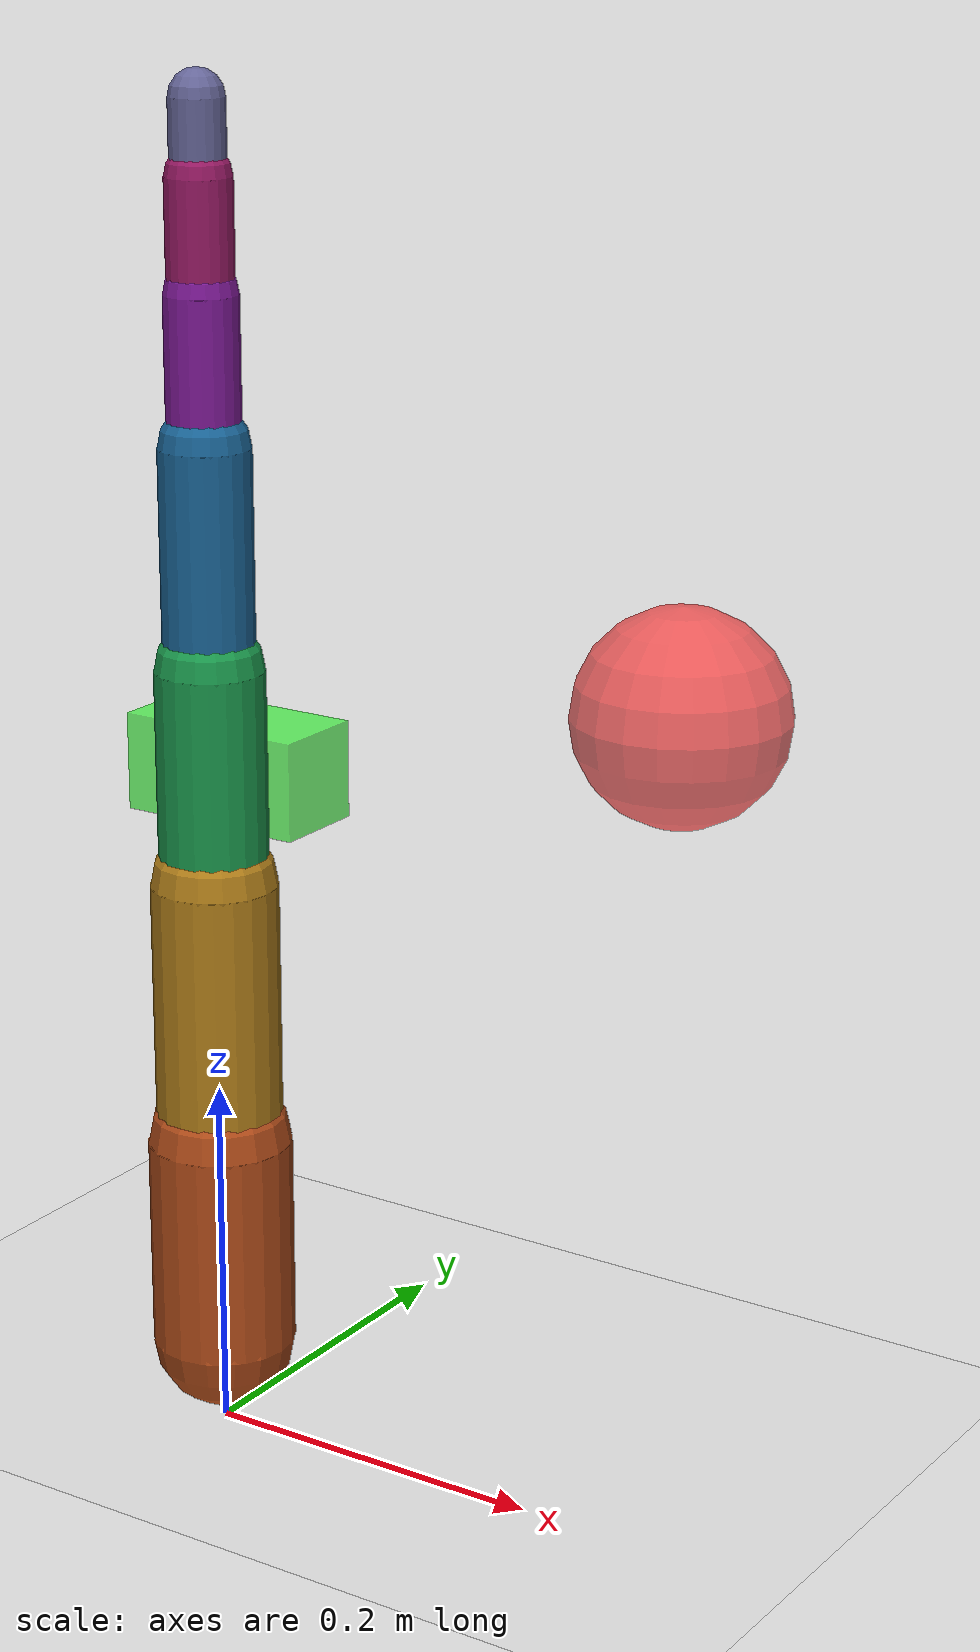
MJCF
<mujoco model="arm7dof">
  <compiler angle="radian"/>
  <option gravity="0 0 -9.81"/>

  <default>
    <joint damping="0.5" armature="0.01"/>
    <geom contype="1" conaffinity="1" condim="3" friction="1 0.005 0.001"/>
  </default>

  <worldbody>
    <light pos="0 0 3" dir="0 0 -1"/>
    <geom name="floor" type="plane" size="2 2 0.01" contype="0" conaffinity="0" rgba="0.9 0.9 0.9 1"/>

    <body name="link1" pos="0 0 0.05">
      <joint name="j1" type="hinge" axis="0 0 1" range="-2.89 2.89"/>
      <geom name="g1" type="capsule" fromto="0 0 0 0 0 0.12" size="0.04" mass="2.0" rgba="0.7 0.3 0.1 1"/>

      <body name="link2" pos="0 0 0.12">
        <joint name="j2" type="hinge" axis="0 1 0" range="-1.76 1.76"/>
        <geom name="g2" type="capsule" fromto="0 0 0 0 0 0.15" size="0.035" mass="2.0" rgba="0.7 0.5 0.1 1"/>

        <body name="link3" pos="0 0 0.15">
          <joint name="j3" type="hinge" axis="0 0 1" range="-2.89 2.89"/>
          <geom name="g3" type="capsule" fromto="0 0 0 0 0 0.12" size="0.03" mass="1.5" rgba="0.1 0.6 0.3 1"/>

          <body name="link4" pos="0 0 0.12">
            <joint name="j4" type="hinge" axis="0 1 0" range="-2.5 0.5"/>
            <geom name="g4" type="capsule" fromto="0 0 0 0 0 0.12" size="0.025" mass="1.5" rgba="0.1 0.4 0.6 1"/>

            <body name="link5" pos="0 0 0.12">
              <joint name="j5" type="hinge" axis="0 0 1" range="-2.89 2.89"/>
              <geom name="g5" type="capsule" fromto="0 0 0 0 0 0.08" size="0.02" mass="1.0" rgba="0.5 0.1 0.6 1"/>

              <body name="link6" pos="0 0 0.08">
                <joint name="j6" type="hinge" axis="0 1 0" range="-1.5 2.5"/>
                <geom name="g6" type="capsule" fromto="0 0 0 0 0 0.06" size="0.018" mass="0.5" rgba="0.6 0.1 0.4 1"/>

                <body name="link7" pos="0 0 0.06">
                  <joint name="j7" type="hinge" axis="0 0 1" range="-2.89 2.89"/>
                  <geom name="g7" type="capsule" fromto="0 0 0 0 0 0.04" size="0.015" mass="0.3" rgba="0.4 0.4 0.6 1"/>

                  <site name="ee_site" pos="0 0 0.04" size="0.005" rgba="1 0 0 1"/>
                </body>
              </body>
            </body>
          </body>
        </body>
      </body>
    </body>

    <body name="obs1" pos="0.22 0.12 0.42">
      <geom name="obstacle1" type="sphere" size="0.06" rgba="1 0.2 0.2 0.7" contype="1" conaffinity="1" mass="0.001"/>
    </body>

    <body name="obs2" pos="-0.12 0.18 0.32">
      <geom name="obstacle2" type="box" size="0.06 0.03 0.03" rgba="0.2 1 0.2 0.7" contype="1" conaffinity="1" mass="0.001"/>
    </body>
  </worldbody>

  <keyframe>
    <key name="home" qpos="0 0.3 0 -1.0 0 0.8 0"/>
  </keyframe>
</mujoco>
